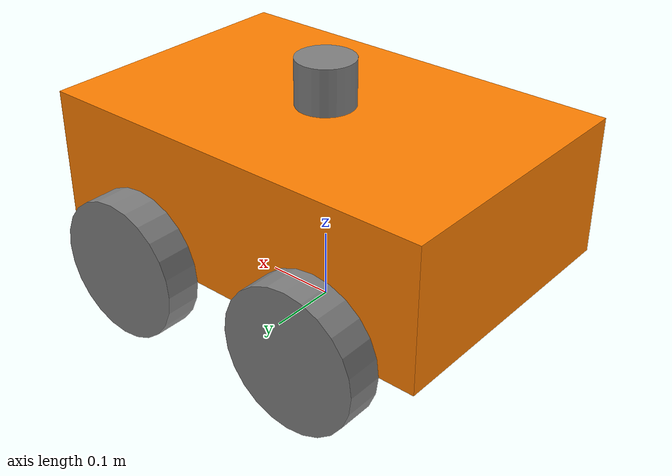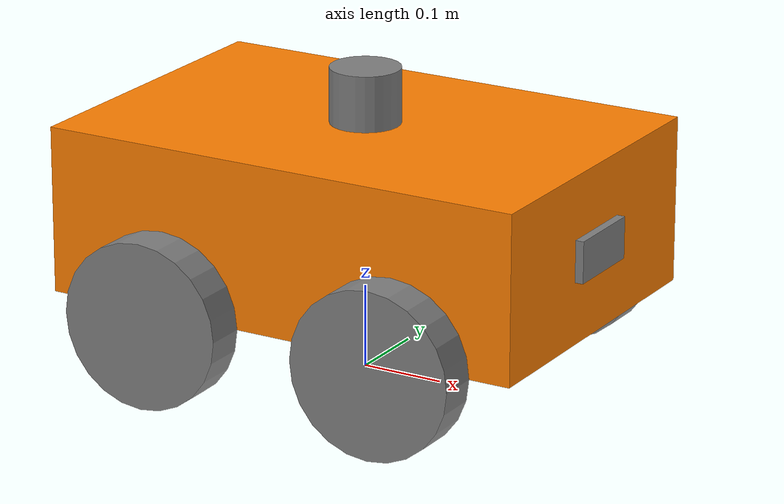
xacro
<?xml version="1.0"?>
<robot name="my_robot" xmlns:xacro="http://www.ros.org/wiki/xacro">

    <xacro:include filename="common_properties.xacro" />

    <xacro:include filename="robot_parts.xacro" />

    <xacro:include filename="robot_parts_gazebo.xacro" />

    <xacro:include filename="camera.xacro" />

    <xacro:include filename="lidar.xacro" />

</robot>

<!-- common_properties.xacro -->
<robot xmlns:xacro="http://www.ros.org/wiki/xacro">

    <material name="orange">
        <color rgba="1 0.5 0 1" />
    </material>

    <material name="grey">
        <color rgba="0.5 0.5 0.5 1" />
    </material>

    <xacro:macro name="body_inertia" params="m l w h xyz rpy">
        <inertial>
            <origin xyz="${xyz}" rpy="${rpy}" />
            <mass value="${m}" />
            <inertia ixx="${(m/12) * (h*h + l*l)}" ixy="0" ixz="0"
                     iyy="${(m/12) * (w*w + l*l)}" iyz="0"
                     izz="${(m/12) * (w*w) + h*h}" />
        </inertial>
    </xacro:macro>

    <xacro:macro name="wheel_inertia" params="m r h xyz rpy">
        <inertial>
            <origin xyz="${xyz}" rpy="${rpy}" />
            <mass value="${m}" />
            <inertia ixx="${(m/12) * (3*r*r + h*h)}" ixy="0" ixz="0"
                     iyy="${(m/12) * (3*r*r + h*h)}" iyz="0"
                     izz="${(m/2) * (r*r)}" />
        </inertial>
    </xacro:macro>

</robot>

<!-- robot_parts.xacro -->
<robot xmlns:xacro="http://www.ros.org/wiki/xacro">

    <xacro:property name="base_length" value="0.6" />
    <xacro:property name="base_width" value="0.4" />
    <xacro:property name="base_height" value="0.2" />
    <xacro:property name="wheel_radius" value="0.1" />
    <xacro:property name="wheel_length" value="0.05" />

    <link name="base_footprint" />

    <joint name="base_joint" type="fixed">
        <parent link="base_footprint" />
        <child link="base_link" />
        <origin xyz="0 0 ${wheel_radius}" rpy="0 0 0"/>
    </joint>

    <link name="base_link">
        <visual>
            <geometry>
                <box size="${base_length} ${base_width} ${base_height}" />
            </geometry>
            <origin xyz="0 0 ${base_height / 2.0}" rpy="0 0 0" />
            <material name="orange" />
        </visual>
        <collision>
            <geometry>
                <box size="${base_length} ${base_width} ${base_height}" />
            </geometry>
            <origin xyz="0 0 ${base_height / 2.0}" rpy="0 0 0" />
        </collision>
        <xacro:body_inertia m="10" l="${2*base_length}" w="${2*base_width}" h="${2*base_width}"
                           xyz="0 0 ${base_height / 2.0}" rpy="0 0 0" />
    </link>

    <link name="right_rear_wheel_link">
        <visual>
            <geometry>
                <cylinder radius="${wheel_radius}" length="${wheel_length}" />
            </geometry>
            <origin xyz="0 0 0" rpy="${pi / 2.0} 0 0" />
            <material name="grey" />
        </visual>
        <collision>
            <geometry>
                <cylinder radius="${wheel_radius}" length="${wheel_length}" />
            </geometry>
            <origin xyz="0 0 0" rpy="${pi / 2.0} 0 0" />
        </collision>
        <xacro:wheel_inertia m="0.2" r="${2*wheel_radius}" h="${2*wheel_length}"
                             xyz="0 0 0" rpy="${pi / 2.0} 0 0" />
    </link>

    <joint name="base_right_rear_wheel_joint" type="continuous">
        <parent link="base_link" />
        <child link="right_rear_wheel_link" />
        <origin xyz="${-base_length / 4.0} ${-(base_width + wheel_length) / 2.0} 0" rpy="0 0 0" />
        <axis xyz="0 1 0" />
    </joint>

    <link name="left_rear_wheel_link">
        <visual>
            <geometry>
                <cylinder radius="${wheel_radius}" length="${wheel_length}" />
            </geometry>
            <origin xyz="0 0 0" rpy="${pi / 2.0} 0 0" />
            <material name="grey" />
        </visual>
        <collision>
            <geometry>
                <cylinder radius="${wheel_radius}" length="${wheel_length}" />
            </geometry>
            <origin xyz="0 0 0" rpy="${pi / 2.0} 0 0" />
        </collision>
        <xacro:wheel_inertia m="0.2" r="${2*wheel_radius}" h="${2*wheel_length}"
                             xyz="0 0 0" rpy="${pi / 2.0} 0 0" />
    </link>

    <joint name="base_left_rear_wheel_joint" type="continuous">
        <parent link="base_link" />
        <child link="left_rear_wheel_link" />
        <origin xyz="${-base_length / 4.0} ${(base_width + wheel_length) / 2.0} 0" rpy="0 0 0" />
        <axis xyz="0 1 0" />
    </joint>

    <link name="right_front_wheel_link">
        <visual>
            <geometry>
                <cylinder radius="${wheel_radius}" length="${wheel_length}" />
            </geometry>
            <origin xyz="0 0 0" rpy="${pi / 2.0} 0 0" />
            <material name="grey" />
        </visual>
        <collision>
            <geometry>
                <cylinder radius="${wheel_radius}" length="${wheel_length}" />
            </geometry>
            <origin xyz="0 0 0" rpy="${pi / 2.0} 0 0" />
        </collision>
        <xacro:wheel_inertia m="0.2" r="${2*wheel_radius}" h="${2*wheel_length}"
                             xyz="0 0 0" rpy="${pi / 2.0} 0 0" />
    </link>

    <joint name="base_right_front_wheel_joint" type="continuous">
        <parent link="base_link" />
        <child link="right_front_wheel_link" />
        <origin xyz="${base_length / 4.0} ${-(base_width + wheel_length) / 2.0} 0" rpy="0 0 0" />
        <axis xyz="0 1 0" />
    </joint>

    <link name="left_front_wheel_link">
        <visual>
            <geometry>
                <cylinder radius="${wheel_radius}" length="${wheel_length}" />
            </geometry>
            <origin xyz="0 0 0" rpy="${pi / 2.0} 0 0" />
            <material name="grey" />
        </visual>
        <collision>
            <geometry>
                <cylinder radius="${wheel_radius}" length="${wheel_length}" />
            </geometry>
            <origin xyz="0 0 0" rpy="${pi / 2.0} 0 0" />
        </collision>
        <xacro:wheel_inertia m="0.2" r="${2*wheel_radius}" h="${2*wheel_length}"
                             xyz="0 0 0" rpy="${pi / 2.0} 0 0" />
    </link>

    <joint name="base_left_front_wheel_joint" type="continuous">
        <parent link="base_link" />
        <child link="left_front_wheel_link" />
        <origin xyz="${base_length / 4.0} ${(base_width + wheel_length) / 2.0} 0" rpy="0 0 0" />
        <axis xyz="0 1 0" />
    </joint>

</robot>

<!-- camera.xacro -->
<robot xmlns:xacro="http://www.ros.org/wiki/xacro">

    <xacro:property name="camera_length" value="0.01" />
    <xacro:property name="camera_width" value="0.1" />
    <xacro:property name="camera_height" value="0.05" />

    <link name="camera_link">
        <visual>
            <geometry>
                <box size="${camera_length} ${camera_width} ${camera_height}" />
            </geometry>
            <material name="grey" />
        </visual>
        <collision>
            <geometry>
                <box size="${camera_length} ${camera_width} ${camera_height}" />
            </geometry>
        </collision>
        <xacro:body_inertia m="0.1" l="${camera_length}" w="${camera_width}" h="${camera_height}"
                           xyz="0 0 0" rpy="0 0 0" />
    </link>

    <joint name="base_camera_joint" type="fixed">
        <parent link="base_link" />
        <child link="camera_link" />
        <origin xyz="${(base_length + camera_length) / 2.0} 0 ${base_height / 2.0}" rpy="0 0 0" />
    </joint>

    <link name="camera_depth_link"/>

    <joint name="camera_depth_joint" type="fixed">
      <parent link="camera_link"/>
      <child link="camera_depth_link"/>
      <origin xyz="0 0 0" rpy="-1.57 0 -1.57"/>
    </joint>

    <gazebo reference="camera_link">
        <material>Gazebo/Grey</material>

        <sensor name="camera_sensor" type="depth">
            <pose> 0 0 0 0 0 0 </pose>
            <visualize>true</visualize>
            <update_rate>10</update_rate>
            <camera>
                <horizontal_fov>1.089</horizontal_fov>
                <image>
                    <width>640</width>
                    <height>480</height>
                    <format>B8G8R8</format>
                </image>
                <clip>
                    <near>0.05</near>
                    <far>10.0</far>
                </clip>
            </camera>
            <plugin name="camera_controller" filename="libgazebo_ros_camera.so">
                <frame_name>camera_depth_link</frame_name>
                <min_depth>0.1</min_depth>
                <max_depth>100.0</max_depth>
            </plugin>
        </sensor>

    </gazebo>
</robot>

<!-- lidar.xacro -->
<robot xmlns:xacro="http://www.ros.org/wiki/xacro" name="OS1-64">

    <xacro:property name="lidar_radius" value="0.042" />
    <xacro:property name="lidar_length" value="0.073" />

    <link name="os_sensor">
         <visual>
            <geometry>
                <cylinder radius="${lidar_radius}" length="${lidar_length}" />
            </geometry>
            <material name="grey" />
        </visual>
        <collision>
            <geometry>
                    <cylinder radius="${lidar_radius}" length="${lidar_length}" />
            </geometry>
        </collision>
        <xacro:wheel_inertia m="0.380" r="${lidar_radius}" h="${lidar_length}"
                             xyz="0 0 0" rpy="0 0 0" />
    </link>

    <joint name="base_os_joint" type="fixed">
        <parent link="base_link" />
        <child link="os_sensor" />
        <origin xyz="0 0 ${base_height + 0.03}" rpy="0 0 0" />
    </joint>

    <link name="os_imu" />

    <joint name="os_sensor_imu_link_joint" type="fixed">
      <parent link="os_sensor" />
      <child link="os_imu" />
      <origin xyz="0.006253 -0.011775 0.007645" rpy="0 0 0" />
    </joint>
    <gazebo reference="os_imu">
    </gazebo>

    <link name="os_lidar" />

    <joint name="os_sensor_lidar_link_joint" type="fixed">
      <parent link="os_sensor" />
      <child link="os_lidar" />
      <origin xyz="0.0 0.0 0.03618" rpy="0 0 0" />
    </joint>

    <!-- Plugin for 2d lidar -->

    <!-- Plugin for 3d lidar -->

    <gazebo reference="os_sensor">
        <material>Gazebo/Grey</material>
        <sensor name="lidar_sensor" type="ray">
          <always_on>true</always_on>
          <pose>0 0 0 0 0 0</pose>
          <visualize>false</visualize>
          <update_rate>10.0</update_rate>
          <ray>
            <scan>
              <horizontal>
                <samples>512</samples>
                <resolution>1</resolution>
                <min_angle>-3.1415926535897931</min_angle>
                <max_angle>3.1415926535897931</max_angle>
              </horizontal>
              <vertical>
                <samples>64</samples>
                <resolution>1</resolution>
                <min_angle>-0.33</min_angle>
                <max_angle>0.90</max_angle>
              </vertical>
            </scan>
            <range>
              <min>0.3</min>
              <max>10.0</max>
              <resolution>0.03</resolution>
            </range>
          </ray>
          <plugin name="lidar_controller" filename="libgazebo_ros_ray_sensor.so">
            <ros>
              <remapping>~/out:=scan</remapping>
            </ros>
            <output_type>sensor_msgs/PointCloud2</output_type>
            <alwaysOn>true</alwaysOn>
            <updateRate>10.0</updateRate>
            <topicName>/scan</topicName>
            <frameName>os_sensor</frameName>
            <organize_cloud>true</organize_cloud>
            <min_range>0.3</min_range>
            <max_range>100.0</max_range>
            <gaussianNoise>0.008</gaussianNoise>
            <output_type>sensor_msgs/PointCloud2</output_type>
          </plugin>
        </sensor>
    </gazebo>

  <gazebo>
    <plugin name="imu_controller" filename="libhector_gazebo_ros_imu.so">
      <robotNamespace>/</robotNamespace>
      <updateRate>100.0</updateRate>
      <bodyName>os_imu</bodyName>
      <topicName>/imu</topicName>
      <accelDrift>0.005 0.005 0.005</accelDrift>
      <accelGaussianNoise>0.005 0.005 0.005</accelGaussianNoise>
      <rateDrift>0.005 0.005 0.005 </rateDrift>
      <rateGaussianNoise>0.005 0.005 0.005 </rateGaussianNoise>
      <headingDrift>0.005</headingDrift>
      <headingGaussianNoise>0.005</headingGaussianNoise>
    </plugin>
  </gazebo>

</robot>
